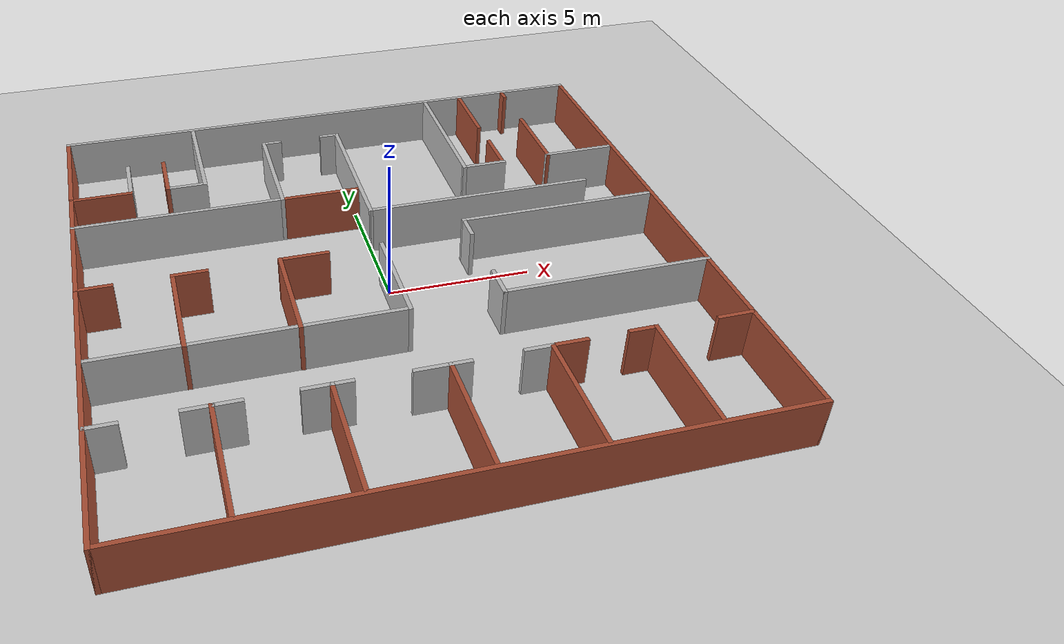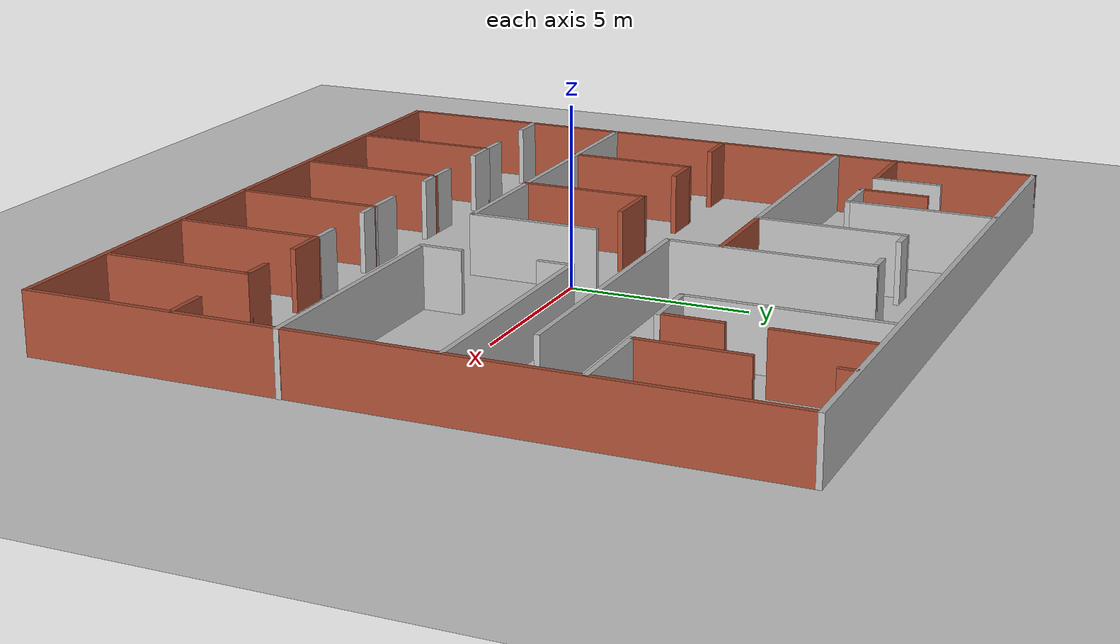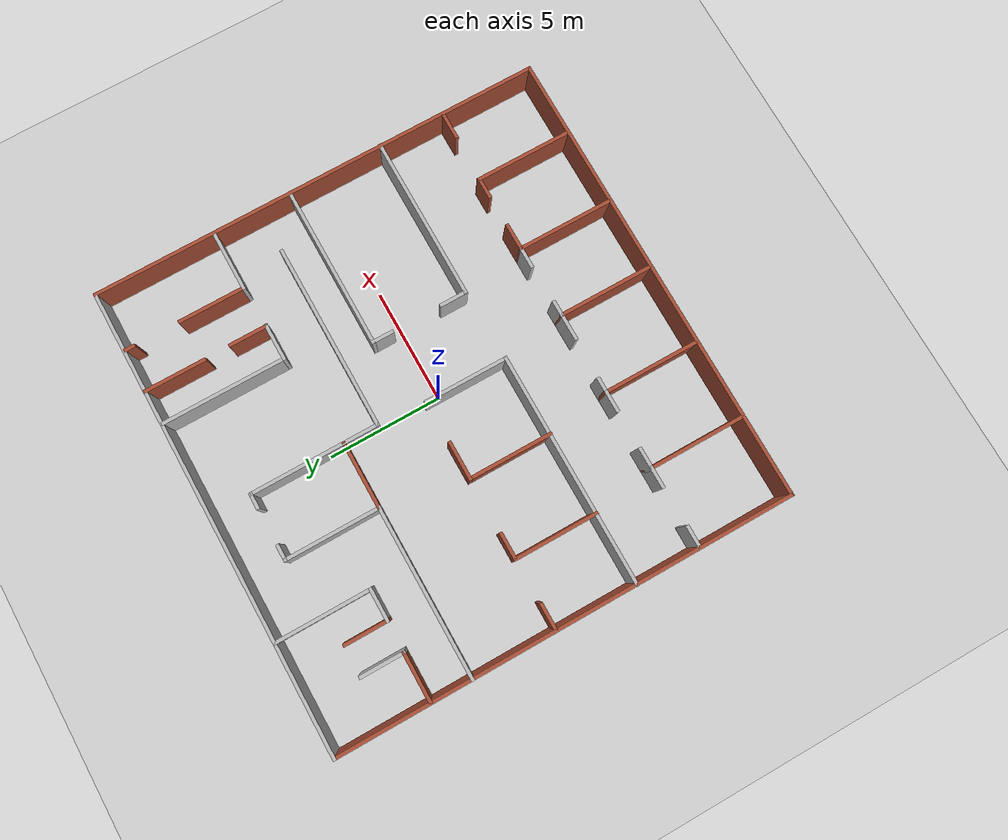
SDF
<sdf version='1.6'>
  <world name='default'>
    <light name='sun' type='directional'>
      <cast_shadows>1</cast_shadows>
      <pose frame=''>0 0 10 0 -0 0</pose>
      <diffuse>0.8 0.8 0.8 1</diffuse>
      <specular>0.2 0.2 0.2 1</specular>
      <attenuation>
        <range>1000</range>
        <constant>0.9</constant>
        <linear>0.01</linear>
        <quadratic>0.001</quadratic>
      </attenuation>
      <direction>-0.5 0.1 -0.9</direction>
    </light>
    <model name='ground_plane'>
      <static>1</static>
      <link name='link'>
        <collision name='collision'>
          <geometry>
            <plane>
              <normal>0 0 1</normal>
              <size>100 100</size>
            </plane>
          </geometry>
          <surface>
            <friction>
              <ode>
                <mu>100</mu>
                <mu2>50</mu2>
              </ode>
              <torsional>
                <ode/>
              </torsional>
            </friction>
            <contact>
              <ode/>
            </contact>
            <bounce/>
          </surface>
          <max_contacts>10</max_contacts>
        </collision>
        <visual name='visual'>

	<material> <!-- Body material -->
          <script>
            <uri>model://materials/scripts/repeated.material</uri>
            <name>RepeatedTexture</name>
          </script>
        </material> <!-- End Body Material -->

          <cast_shadows>0</cast_shadows>
          <geometry>
            <plane>
              <normal>0 0 1</normal>
              <size>100 100</size>
            </plane>
          </geometry>
          <material>
            <script>
              <uri>file://media/materials/scripts/gazebo.material</uri>
              <name>Gazebo/Grey</name>
            </script>
          </material>
        </visual>
        <self_collide>0</self_collide>
        <kinematic>0</kinematic>
      </link>
    </model>
    <gravity>0 0 -9.8</gravity>
    <magnetic_field>6e-06 2.3e-05 -4.2e-05</magnetic_field>
    <atmosphere type='adiabatic'/>
    <physics name='default_physics' default='0' type='ode'>
      <max_step_size>0.001</max_step_size>
      <real_time_factor>1</real_time_factor>
      <real_time_update_rate>1000</real_time_update_rate>
    </physics>
    <scene>
      <ambient>0.4 0.4 0.4 1</ambient>
      <background>0.7 0.7 0.7 1</background>
      <shadows>1</shadows>
    </scene>
    <spherical_coordinates>
      <surface_model>EARTH_WGS84</surface_model>
      <latitude_deg>0</latitude_deg>
      <longitude_deg>0</longitude_deg>
      <elevation>0</elevation>
      <heading_deg>0</heading_deg>
    </spherical_coordinates>
    <model name='Untitled'>
      <pose frame=''>-0.031815 0.055766 .45 0 -0 0</pose>
      <link name='Wall_11'>
        <collision name='Wall_11_Collision'>
          <geometry>
            <box>
              <size>2.21502 0.15 2.5</size>
            </box>
          </geometry>
          <pose frame=''>0 0 0 0 -0 0</pose>
          <max_contacts>10</max_contacts>
          <surface>
            <contact>
              <ode/>
            </contact>
            <bounce/>
            <friction>
              <torsional>
                <ode/>
              </torsional>
              <ode/>
            </friction>
          </surface>
        </collision>
        <visual name='Wall_11_Visual'>
          <pose frame=''>0 0 0 0 -0 0</pose>
          <geometry>
            <box>
              <size>2.21502 0.15 2.5</size>
            </box>
          </geometry>
          <material>
            <script>
              <uri>file://media/materials/scripts/gazebo.material</uri>
              <name>Gazebo/Bricks</name>
            </script>
            <ambient>1 1 1 1</ambient>
          </material>
          <meta>
            <layer>0</layer>
          </meta>
        </visual>
        <pose frame=''>-9.12135 5.94752 0 0 -0 0</pose>
        <self_collide>0</self_collide>
        <kinematic>0</kinematic>
      </link>
      <link name='Wall_12'>
        <collision name='Wall_12_Collision'>
          <geometry>
            <box>
              <size>2 0.15 2.5</size>
            </box>
          </geometry>
          <pose frame=''>0 0 0 0 -0 0</pose>
          <max_contacts>10</max_contacts>
          <surface>
            <contact>
              <ode/>
            </contact>
            <bounce/>
            <friction>
              <torsional>
                <ode/>
              </torsional>
              <ode/>
            </friction>
          </surface>
        </collision>
        <visual name='Wall_12_Visual'>
          <pose frame=''>0 0 0 0 -0 0</pose>
          <geometry>
            <box>
              <size>2 0.15 2.5</size>
            </box>
          </geometry>

	<material> <!-- Body material -->
          <script>
            <uri>model://materials/scripts/Pillar.material</uri>
            <name>Pillar</name>
          </script>
        </material> <!-- End Body Material -->

          <meta>
            <layer>0</layer>
          </meta>
        </visual>
        <pose frame=''>-8.07135 6.87252 0 0 -0 1.5708</pose>
        <self_collide>0</self_collide>
        <kinematic>0</kinematic>
      </link>
      <link name='Wall_16'>
        <collision name='Wall_16_Collision'>
          <geometry>
            <box>
              <size>4.25 0.15 2.5</size>
            </box>
          </geometry>
          <pose frame=''>0 0 0 0 -0 0</pose>
          <max_contacts>10</max_contacts>
          <surface>
            <contact>
              <ode/>
            </contact>
            <bounce/>
            <friction>
              <torsional>
                <ode/>
              </torsional>
              <ode/>
            </friction>
          </surface>
        </collision>
        <visual name='Wall_16_Visual'>

	<material> <!-- Body material -->
          <script>
            <uri>model://materials/scripts/WallOne.material</uri>
            <name>WallOne</name>
          </script>
        </material> <!-- End Body Material -->

          <pose frame=''>0 0 0 0 -0 0</pose>
          <geometry>
            <box>
              <size>4.25 0.15 2.5</size>
            </box>
          </geometry>

          <meta>
            <layer>0</layer>
          </meta>
        </visual>
        <pose frame=''>-5.39656 7.9727 0 0 0 -1.5708</pose>
        <self_collide>0</self_collide>
        <kinematic>0</kinematic>
      </link>
      <link name='Wall_17'>
        <collision name='Wall_17_Collision'>
          <geometry>
            <box>
              <size>1.5 0.15 2.5</size>
            </box>
          </geometry>
          <pose frame=''>0 0 0 0 -0 0</pose>
          <max_contacts>10</max_contacts>
          <surface>
            <contact>
              <ode/>
            </contact>
            <bounce/>
            <friction>
              <torsional>
                <ode/>
              </torsional>
              <ode/>
            </friction>
          </surface>
        </collision>
        <visual name='Wall_17_Visual'>
          <pose frame=''>0 0 0 0 -0 0</pose>
          <geometry>
            <box>
              <size>1.5 0.15 2.5</size>
            </box>
          </geometry>

<material> <!-- Body material -->
          <script>
            <uri>model://materials/scripts/Hall.material</uri>
            <name>Hall</name>
          </script>
        </material> <!-- End Body Material -->

          <meta>
            <layer>0</layer>
          </meta>
        </visual>
        <pose frame=''>-6.07156 5.9227 0 0 -0 3.14159</pose>
        <self_collide>0</self_collide>
        <kinematic>0</kinematic>
      </link>
      <link name='Wall_18'>
        <collision name='Wall_18_Collision'>
          <geometry>
            <box>
              <size>2 0.15 2.5</size>
            </box>
          </geometry>
          <pose frame=''>0 0 0 0 -0 0</pose>
          <max_contacts>10</max_contacts>
          <surface>
            <contact>
              <ode/>
            </contact>
            <bounce/>
            <friction>
              <torsional>
                <ode/>
              </torsional>
              <ode/>
            </friction>
          </surface>
        </collision>
        <visual name='Wall_18_Visual'>
          <pose frame=''>0 0 0 0 -0 0</pose>
          <geometry>
            <box>
              <size>2 0.15 2.5</size>
            </box>
          </geometry>
          <material>
            <script>
              <uri>file://media/materials/scripts/gazebo.material</uri>
              <name>Gazebo/Bricks</name>
            </script>
            <ambient>1 1 1 1</ambient>
          </material>
          <meta>
            <layer>0</layer>
          </meta>
        </visual>
        <pose frame=''>-6.74656 6.8477 0 0 -0 1.5708</pose>
        <self_collide>0</self_collide>
        <kinematic>0</kinematic>
      </link>
      <link name='Wall_2'>
        <collision name='Wall_2_Collision'>
          <geometry>
            <box>
              <size>20.5 0.15 2.5</size>
            </box>
          </geometry>
          <pose frame=''>0 0 0 0 -0 0</pose>
          <max_contacts>10</max_contacts>
          <surface>
            <contact>
              <ode/>
            </contact>
            <bounce/>
            <friction>
              <torsional>
                <ode/>
              </torsional>
              <ode/>
            </friction>
          </surface>
        </collision>
        <visual name='Wall_2_Visual'>
          <pose frame=''>0 0 0 0 -0 0</pose>
          <geometry>
            <box>
              <size>20.5 0.15 2.5</size>
            </box>
          </geometry>

          <material> <!-- Body material -->
          <script>
            <uri>model://materials/scripts/LabWall.material</uri>
            <name>LabWall</name>
          </script>
        </material> <!-- End Body Material -->

          <meta>
            <layer>0</layer>
          </meta>
        </visual>
        <pose frame=''>-0.003531 10.05 0 0 -0 0</pose>
        <self_collide>0</self_collide>
        <kinematic>0</kinematic>
      </link>
      <link name='Wall_21'>
        <collision name='Wall_21_Collision'>
          <geometry>
            <box>
              <size>2.75 0.15 2.5</size>
            </box>
          </geometry>
          <pose frame=''>0 0 0 0 -0 0</pose>
          <max_contacts>10</max_contacts>
          <surface>
            <contact>
              <ode/>
            </contact>
            <bounce/>
            <friction>
              <torsional>
                <ode/>
              </torsional>
              <ode/>
            </friction>
          </surface>
        </collision>
        <visual name='Wall_21_Visual'>
          <pose frame=''>0 0 0 0 -0 0</pose>
          <geometry>
            <box>
              <size>2.75 0.15 2.5</size>
            </box>
          </geometry>
          <material> <!-- Body material -->
          <script>
            <uri>model://materials/scripts/Office.material</uri>
            <name>Office</name>
          </script>
        </material> <!-- End Body Material -->
          <meta>
            <layer>0</layer>
          </meta>
        </visual>
        <pose frame=''>8.83462 4.72321 0 0 -0 3.14159</pose>
        <self_collide>0</self_collide>
        <kinematic>0</kinematic>
      </link>
      <link name='Wall_22'>
        <collision name='Wall_22_Collision'>
          <geometry>
            <box>
              <size>3 0.15 2.5</size>
            </box>
          </geometry>
          <pose frame=''>0 0 0 0 -0 0</pose>
          <max_contacts>10</max_contacts>
          <surface>
            <contact>
              <ode/>
            </contact>
            <bounce/>
            <friction>
              <torsional>
                <ode/>
              </torsional>
              <ode/>
            </friction>
          </surface>
        </collision>
        <visual name='Wall_22_Visual'>
          <pose frame=''>0 0 0 0 -0 0</pose>
          <geometry>
            <box>
              <size>3 0.15 2.5</size>
            </box>
          </geometry>
          <material>
            <script>
              <uri>file://media/materials/scripts/gazebo.material</uri>
              <name>Gazebo/Bricks</name>
            </script>
            <ambient>1 1 1 1</ambient>
          </material>
          <meta>
            <layer>0</layer>
          </meta>
        </visual>
        <pose frame=''>7.53462 6.14821 0 0 -0 1.5708</pose>
        <self_collide>0</self_collide>
        <kinematic>0</kinematic>
      </link>
      <link name='Wall_25'>
        <collision name='Wall_25_Collision'>
          <geometry>
            <box>
              <size>5.5 0.15 2.5</size>
            </box>
          </geometry>
          <pose frame=''>0 0 0 0 -0 0</pose>
          <max_contacts>10</max_contacts>
          <surface>
            <contact>
              <ode/>
            </contact>
            <bounce/>
            <friction>
              <torsional>
                <ode/>
              </torsional>
              <ode/>
            </friction>
          </surface>
        </collision>
        <visual name='Wall_25_Visual'>
          <pose frame=''>0 0 0 0 -0 0</pose>
          <geometry>
            <box>
              <size>5.5 0.15 2.5</size>
            </box>
          </geometry>
          <material> <!-- Body material -->
          <script>
            <uri>model://materials/scripts/lab.material</uri>
            <name>lab</name>
          </script>
        </material> <!-- End Body Material -->
          <meta>
            <layer>0</layer>
          </meta>
        </visual>
        <pose frame=''>4.17358 7.32047 0 0 -0 1.5708</pose>
        <self_collide>0</self_collide>
        <kinematic>0</kinematic>
      </link>
      <link name='Wall_27'>
        <collision name='Wall_27_Collision'>
          <geometry>
            <box>
              <size>1.68966 0.15 2.5</size>
            </box>
          </geometry>
          <pose frame=''>0 0 0 0 -0 0</pose>
          <max_contacts>10</max_contacts>
          <surface>
            <contact>
              <ode/>
            </contact>
            <bounce/>
            <friction>
              <torsional>
                <ode/>
              </torsional>
              <ode/>
            </friction>
          </surface>
        </collision>
        <visual name='Wall_27_Visual'>
          <pose frame=''>0 0 0 0 -0 0</pose>
          <geometry>
            <box>
              <size>1.68966 0.15 2.5</size>
            </box>
          </geometry>
          <material> <!-- Body material -->
          <script>
            <uri>model://materials/scripts/Pillar.material</uri>
            <name>Pillar</name>
          </script>
        </material> <!-- End Body Material -->
          <meta>
            <layer>0</layer>
          </meta>
        </visual>
        <pose frame=''>4.94341 4.64547 0 0 -0 0</pose>
        <self_collide>0</self_collide>
        <kinematic>0</kinematic>
      </link>
      <link name='Wall_28'>
        <collision name='Wall_28_Collision'>
          <geometry>
            <box>
              <size>1.75 0.15 2.5</size>
            </box>
          </geometry>
          <pose frame=''>0 0 0 0 -0 0</pose>
          <max_contacts>10</max_contacts>
          <surface>
            <contact>
              <ode/>
            </contact>
            <bounce/>
            <friction>
              <torsional>
                <ode/>
              </torsional>
              <ode/>
            </friction>
          </surface>
        </collision>
        <visual name='Wall_28_Visual'>
          <pose frame=''>0 0 0 0 -0 0</pose>
          <geometry>
            <box>
              <size>1.75 0.15 2.5</size>
            </box>
          </geometry>
          <material>
            <script>
              <uri>file://media/materials/scripts/gazebo.material</uri>
              <name>Gazebo/Bricks</name>
            </script>
            <ambient>1 1 1 1</ambient>
          </material>
          <meta>
            <layer>0</layer>
          </meta>
        </visual>
        <pose frame=''>5.69313 5.44547 0 0 -0 1.5708</pose>
        <self_collide>0</self_collide>
        <kinematic>0</kinematic>
      </link>
      <link name='Wall_32'>
        <collision name='Wall_32_Collision'>
          <geometry>
            <box>
              <size>7.5 0.15 2.5</size>
            </box>
          </geometry>
          <pose frame=''>0 0 0 0 -0 0</pose>
          <max_contacts>10</max_contacts>
          <surface>
            <contact>
              <ode/>
            </contact>
            <bounce/>
            <friction>
              <torsional>
                <ode/>
              </torsional>
              <ode/>
            </friction>
          </surface>
        </collision>
        <visual name='Wall_32_Visual'>
          <pose frame=''>0 0 0 0 -0 0</pose>
          <geometry>
            <box>
              <size>7.5 0.15 2.5</size>
            </box>
          </geometry>
          <material> <!-- Body material -->
          <script>
            <uri>model://materials/scripts/Table.material</uri>
            <name>Table</name>
          </script>
        </material> <!-- End Body Material -->
          <meta>
            <layer>0</layer>
          </meta>
        </visual>
        <pose frame=''>-6.51251 4.16275 0 0 -0 0</pose>
        <self_collide>0</self_collide>
        <kinematic>0</kinematic>
      </link>
      <link name='Wall_33'>
        <collision name='Wall_33_Collision'>
          <geometry>
            <box>
              <size>4.25 0.15 2.5</size>
            </box>
          </geometry>
          <pose frame=''>0 0 0 0 -0 0</pose>
          <max_contacts>10</max_contacts>
          <surface>
            <contact>
              <ode/>
            </contact>
            <bounce/>
            <friction>
              <torsional>
                <ode/>
              </torsional>
              <ode/>
            </friction>
          </surface>
        </collision>
        <visual name='Wall_33_Visual'>
          <pose frame=''>0 0 0 0 -0 0</pose>
          <geometry>
            <box>
              <size>4.25 0.15 2.5</size>
            </box>
          </geometry>
          <material> <!-- Body material -->
          <script>
            <uri>model://materials/scripts/Lab2.material</uri>
            <name>Lab2</name>
          </script>
        </material> <!-- End Body Material -->
          <meta>
            <layer>0</layer>
          </meta>
        </visual>
        <pose frame=''>-2.83751 6.21275 0 0 -0 1.5708</pose>
        <self_collide>0</self_collide>
        <kinematic>0</kinematic>
      </link>
      <link name='Wall_34'>
        <collision name='Wall_34_Collision'>
          <geometry>
            <box>
              <size>0.75 0.15 2.5</size>
            </box>
          </geometry>
          <pose frame=''>0 0 0 0 -0 0</pose>
          <max_contacts>10</max_contacts>
          <surface>
            <contact>
              <ode/>
            </contact>
            <bounce/>
            <friction>
              <torsional>
                <ode/>
              </torsional>
              <ode/>
            </friction>
          </surface>
        </collision>
        <visual name='Wall_34_Visual'>
          <pose frame=''>0 0 0 0 -0 0</pose>
          <geometry>
            <box>
              <size>0.75 0.15 2.5</size>
            </box>
          </geometry>
         <material> <!-- Body material -->
          <script>
            <uri>model://materials/scripts/Door.material</uri>
            <name>Door</name>
          </script>
        </material> <!-- End Body Material -->
          <meta>
            <layer>0</layer>
          </meta>
        </visual>
        <pose frame=''>-2.53751 8.26275 0 0 -0 0</pose>
        <self_collide>0</self_collide>
        <kinematic>0</kinematic>
      </link>
      <link name='Wall_36'>
        <collision name='Wall_36_Collision'>
          <geometry>
            <box>
              <size>0.75 0.15 2.5</size>
            </box>
          </geometry>
          <pose frame=''>0 0 0 0 -0 0</pose>
          <max_contacts>10</max_contacts>
          <surface>
            <contact>
              <ode/>
            </contact>
            <bounce/>
            <friction>
              <torsional>
                <ode/>
              </torsional>
              <ode/>
            </friction>
          </surface>
        </collision>
        <visual name='Wall_36_Visual'>
          <pose frame=''>0 0 0 0 -0 0</pose>
          <geometry>
            <box>
              <size>0.75 0.15 2.5</size>
            </box>
          </geometry>
          <material> <!-- Body material -->
          <script>
            <uri>model://materials/scripts/Door.material</uri>
            <name>Door</name>
          </script>
        </material> <!-- End Body Material -->
          <meta>
            <layer>0</layer>
          </meta>
        </visual>
        <pose frame=''>-0.255945 8.26592 0 0 -0 0</pose>
        <self_collide>0</self_collide>
        <kinematic>0</kinematic>
      </link>
      <link name='Wall_37'>
        <collision name='Wall_37_Collision'>
          <geometry>
            <box>
              <size>5.75 0.15 2.5</size>
            </box>
          </geometry>
          <pose frame=''>0 0 0 0 -0 0</pose>
          <max_contacts>10</max_contacts>
          <surface>
            <contact>
              <ode/>
            </contact>
            <bounce/>
            <friction>
              <torsional>
                <ode/>
              </torsional>
              <ode/>
            </friction>
          </surface>
        </collision>
        <visual name='Wall_37_Visual'>
          <pose frame=''>0 0 0 0 -0 0</pose>
          <geometry>
            <box>
              <size>5.75 0.15 2.5</size>
            </box>
          </geometry>
          <material> <!-- Body material -->
          <script>
            <uri>model://materials/scripts/Office.material</uri>
            <name>Office</name>
          </script>
        </material> <!-- End Body Material -->
          <meta>
            <layer>0</layer>
          </meta>
        </visual>
        <pose frame=''>0.044055 5.46592 0 0 0 -1.5708</pose>
        <self_collide>0</self_collide>
        <kinematic>0</kinematic>
      </link>
      <link name='Wall_38'>
        <collision name='Wall_38_Collision'>
          <geometry>
            <box>
              <size>8.25 0.15 2.5</size>
            </box>
          </geometry>
          <pose frame=''>0 0 0 0 -0 0</pose>
          <max_contacts>10</max_contacts>
          <surface>
            <contact>
              <ode/>
            </contact>
            <bounce/>
            <friction>
              <torsional>
                <ode/>
              </torsional>
              <ode/>
            </friction>
          </surface>
        </collision>
        <visual name='Wall_38_Visual'>

	<material> <!-- Body material -->
          <script>
            <uri>model://materials/scripts/Hall.material</uri>
            <name>Hall</name>
          </script>
        </material> <!-- End Body Material -->

          <pose frame=''>0 0 0 0 -0 0</pose>
          <geometry>
            <box>
              <size>8.25 0.15 2.5</size>
            </box>
          </geometry>
          <material>
            <script>
              <uri>file://media/materials/scripts/gazebo.material</uri>
              <name>Gazebo/Bricks</name>
            </script>
            <ambient>1 1 1 1</ambient>
          </material>
          <meta>
            <layer>0</layer>
          </meta>
        </visual>
        <pose frame=''>4.09405 2.66592 0 0 -0 0</pose>
        <self_collide>0</self_collide>
        <kinematic>0</kinematic>
      </link>
      <link name='Wall_4'>
        <collision name='Wall_4_Collision'>
          <geometry>
            <box>
              <size>20.25 0.15 2.5</size>
            </box>
          </geometry>
          <pose frame=''>0 0 0 0 -0 0</pose>
          <max_contacts>10</max_contacts>
          <surface>
            <contact>
              <ode/>
            </contact>
            <bounce/>
            <friction>
              <torsional>
                <ode/>
              </torsional>
              <ode/>
            </friction>
          </surface>
        </collision>
        <visual name='Wall_4_Visual'>
          <pose frame=''>0 0 0 0 -0 0</pose>
          <geometry>
            <box>
              <size>20.25 0.15 2.5</size>
            </box>
          </geometry>
          <material>
            <script>
              <uri>file://media/materials/scripts/gazebo.material</uri>
              <name>Gazebo/Bricks</name>
            </script>
            <ambient>1 1 1 1</ambient>
          </material>
          <meta>
            <layer>0</layer>
          </meta>
        </visual>
        <pose frame=''>-10.1785 0 0 0 0 -1.5708</pose>
        <self_collide>0</self_collide>
        <kinematic>0</kinematic>
      </link>
      <link name='Wall_40'>
        <collision name='Wall_40_Collision'>
          <geometry>
            <box>
              <size>3 0.15 2.5</size>
            </box>
          </geometry>
          <pose frame=''>0 0 0 0 -0 0</pose>
          <max_contacts>10</max_contacts>
          <surface>
            <contact>
              <ode/>
            </contact>
            <bounce/>
            <friction>
              <torsional>
                <ode/>
              </torsional>
              <ode/>
            </friction>
          </surface>
        </collision>
        <visual name='Wall_40_Visual'>
          <pose frame=''>0 0 0 0 -0 0</pose>
          <geometry>
            <box>
              <size>3 0.15 2.5</size>
            </box>
          </geometry>
          <material>
            <script>
              <uri>file://media/materials/scripts/gazebo.material</uri>
              <name>Gazebo/Bricks</name>
            </script>
            <ambient>1 1 1 1</ambient>
          </material>
          <meta>
            <layer>0</layer>
          </meta>
        </visual>
        <pose frame=''>-1.41251 4.16275 0 0 -0 0</pose>
        <self_collide>0</self_collide>
        <kinematic>0</kinematic>
      </link>
      <link name='Wall_43'>
        <collision name='Wall_43_Collision'>
          <geometry>
            <box>
              <size>4.25 0.15 2.5</size>
            </box>
          </geometry>
          <pose frame=''>0 0 0 0 -0 0</pose>
          <max_contacts>10</max_contacts>
          <surface>
            <contact>
              <ode/>
            </contact>
            <bounce/>
            <friction>
              <torsional>
                <ode/>
              </torsional>
              <ode/>
            </friction>
          </surface>
        </collision>
        <visual name='Wall_43_Visual'>
          <pose frame=''>0 0 0 0 -0 0</pose>
          <geometry>
            <box>
              <size>4.25 0.15 2.5</size>
            </box>
          </geometry>
          <material>
            <script>
              <uri>file://media/materials/scripts/gazebo.material</uri>
              <name>Gazebo/Bricks</name>
            </script>
            <ambient>1 1 1 1</ambient>
          </material>
          <meta>
            <layer>0</layer>
          </meta>
        </visual>
        <pose frame=''>-6.64746 -7.89825 0 0 -0 1.5708</pose>
        <self_collide>0</self_collide>
        <kinematic>0</kinematic>
      </link>
      <link name='Wall_45'>
        <collision name='Wall_45_Collision'>
          <geometry>
            <box>
              <size>1 0.15 2.5</size>
            </box>
          </geometry>
          <pose frame=''>0 0 0 0 -0 0</pose>
          <max_contacts>10</max_contacts>
          <surface>
            <contact>
              <ode/>
            </contact>
            <bounce/>
            <friction>
              <torsional>
                <ode/>
              </torsional>
              <ode/>
            </friction>
          </surface>
        </collision>
        <visual name='Wall_45_Visual'>

	<material> <!-- Body material -->
          <script>
            <uri>model://materials/scripts/Door.material</uri>
            <name>Door</name>
          </script>
        </material> <!-- End Body Material -->

          <pose frame=''>0 0 0 0 -0 0</pose>
          <geometry>
            <box>
              <size>1 0.15 2.5</size>
            </box>
          </geometry>

          <meta>
            <layer>0</layer>
          </meta>
        </visual>
        <pose frame=''>-6.22246 -5.84825 0 0 -0 0</pose>
        <self_collide>0</self_collide>
        <kinematic>0</kinematic>
      </link>
      <link name='Wall_47'>
        <collision name='Wall_47_Collision'>
          <geometry>
            <box>
              <size>1 0.15 2.5</size>
            </box>
          </geometry>
          <pose frame=''>0 0 0 0 -0 0</pose>
          <max_contacts>10</max_contacts>
          <surface>
            <contact>
              <ode/>
            </contact>
            <bounce/>
            <friction>
              <torsional>
                <ode/>
              </torsional>
              <ode/>
            </friction>
          </surface>
        </collision>
        <visual name='Wall_47_Visual'>

	<material> <!-- Body material -->
          <script>
            <uri>model://materials/scripts/Pillar.material</uri>
            <name>Pillar</name>
          </script>
        </material> <!-- End Body Material -->

          <pose frame=''>0 0 0 0 -0 0</pose>
          <geometry>
            <box>
              <size>1 0.15 2.5</size>
            </box>
          </geometry>

          <meta>
            <layer>0</layer>
          </meta>
        </visual>
        <pose frame=''>-3.62781 -5.84508 0 0 -0 0</pose>
        <self_collide>0</self_collide>
        <kinematic>0</kinematic>
      </link>
      <link name='Wall_48'>
        <collision name='Wall_48_Collision'>
          <geometry>
            <box>
              <size>4.25 0.15 2.5</size>
            </box>
          </geometry>
          <pose frame=''>0 0 0 0 -0 0</pose>
          <max_contacts>10</max_contacts>
          <surface>
            <contact>
              <ode/>
            </contact>
            <bounce/>
            <friction>
              <torsional>
                <ode/>
              </torsional>
              <ode/>
            </friction>
          </surface>
        </collision>
        <visual name='Wall_48_Visual'>
          <pose frame=''>0 0 0 0 -0 0</pose>
          <geometry>
            <box>
              <size>4.25 0.15 2.5</size>
            </box>
          </geometry>
          <material>
            <script>
              <uri>file://media/materials/scripts/gazebo.material</uri>
              <name>Gazebo/Bricks</name>
            </script>
            <ambient>1 1 1 1</ambient>
          </material>
          <meta>
            <layer>0</layer>
          </meta>
        </visual>
        <pose frame=''>-3.20281 -7.89508 0 0 0 -1.5708</pose>
        <self_collide>0</self_collide>
        <kinematic>0</kinematic>
      </link>
      <link name='Wall_5'>
        <collision name='Wall_5_Collision'>
          <geometry>
            <box>
              <size>20.5 0.15 2.5</size>
            </box>
          </geometry>
          <pose frame=''>0 0 0 0 -0 0</pose>
          <max_contacts>10</max_contacts>
          <surface>
            <contact>
              <ode/>
            </contact>
            <bounce/>
            <friction>
              <torsional>
                <ode/>
              </torsional>
              <ode/>
            </friction>
          </surface>
        </collision>
        <visual name='Wall_5_Visual'>
          <pose frame=''>0 0 0 0 -0 0</pose>
          <geometry>
            <box>
              <size>20.5 0.15 2.5</size>
            </box>
          </geometry>
          <material>
            <script>
              <uri>file://media/materials/scripts/gazebo.material</uri>
              <name>Gazebo/Bricks</name>
            </script>
            <ambient>1 1 1 1</ambient>
          </material>
          <meta>
            <layer>0</layer>
          </meta>
        </visual>
        <pose frame=''>-0.003531 -10.05 0 0 -0 0</pose>
        <self_collide>0</self_collide>
        <kinematic>0</kinematic>
      </link>
      <link name='Wall_50'>
        <collision name='Wall_50_Collision'>
          <geometry>
            <box>
              <size>4.25 0.15 2.5</size>
            </box>
          </geometry>
          <pose frame=''>0 0 0 0 -0 0</pose>
          <max_contacts>10</max_contacts>
          <surface>
            <contact>
              <ode/>
            </contact>
            <bounce/>
            <friction>
              <torsional>
                <ode/>
              </torsional>
              <ode/>
            </friction>
          </surface>
        </collision>
        <visual name='Wall_50_Visual'>
          <pose frame=''>0 0 0 0 -0 0</pose>
          <geometry>
            <box>
              <size>4.25 0.15 2.5</size>
            </box>
          </geometry>
          <material>
            <script>
              <uri>file://media/materials/scripts/gazebo.material</uri>
              <name>Gazebo/Bricks</name>
            </script>
            <ambient>1 1 1 1</ambient>
          </material>
          <meta>
            <layer>0</layer>
          </meta>
        </visual>
        <pose frame=''>0.35206 -7.93848 0 0 -0 1.5708</pose>
        <self_collide>0</self_collide>
        <kinematic>0</kinematic>
      </link>
      <link name='Wall_51'>
        <collision name='Wall_51_Collision'>
          <geometry>
            <box>
              <size>1.25 0.15 2.5</size>
            </box>
          </geometry>
          <pose frame=''>0 0 0 0 -0 0</pose>
          <max_contacts>10</max_contacts>
          <surface>
            <contact>
              <ode/>
            </contact>
            <bounce/>
            <friction>
              <torsional>
                <ode/>
              </torsional>
              <ode/>
            </friction>
          </surface>
        </collision>
        <visual name='Wall_51_Visual'>

	<material> <!-- Body material -->
          <script>
            <uri>model://materials/scripts/Pillar.material</uri>
            <name>Pillar</name>
          </script>
        </material> <!-- End Body Material -->

          <pose frame=''>0 0 0 0 -0 0</pose>
          <geometry>
            <box>
              <size>1.25 0.15 2.5</size>
            </box>
          </geometry>

          <meta>
            <layer>0</layer>
          </meta>
        </visual>
        <pose frame=''>-0.19794 -5.88848 0 0 -0 3.14159</pose>
        <self_collide>0</self_collide>
        <kinematic>0</kinematic>
      </link>
      <link name='Wall_53'>
        <collision name='Wall_53_Collision'>
          <geometry>
            <box>
              <size>0.75 0.15 2.5</size>
            </box>
          </geometry>
          <pose frame=''>0 0 0 0 -0 0</pose>
          <max_contacts>10</max_contacts>
          <surface>
            <contact>
              <ode/>
            </contact>
            <bounce/>
            <friction>
              <torsional>
                <ode/>
              </torsional>
              <ode/>
            </friction>
          </surface>
        </collision>
        <visual name='Wall_53_Visual'>

	<material> <!-- Body material -->
          <script>
            <uri>model://materials/scripts/Door.material</uri>
            <name>Door</name>
          </script>
        </material> <!-- End Body Material -->

          <pose frame=''>0 0 0 0 -0 0</pose>
          <geometry>
            <box>
              <size>0.75 0.15 2.5</size>
            </box>
          </geometry>

          <meta>
            <layer>0</layer>
          </meta>
        </visual>
        <pose frame=''>-2.90281 -5.84508 0 0 -0 0</pose>
        <self_collide>0</self_collide>
        <kinematic>0</kinematic>
      </link>
      <link name='Wall_55'>
        <collision name='Wall_55_Collision'>
          <geometry>
            <box>
              <size>0.75 0.15 2.5</size>
            </box>
          </geometry>
          <pose frame=''>0 0 0 0 -0 0</pose>
          <max_contacts>10</max_contacts>
          <surface>
            <contact>
              <ode/>
            </contact>
            <bounce/>
            <friction>
              <torsional>
                <ode/>
              </torsional>
              <ode/>
            </friction>
          </surface>
        </collision>
        <visual name='Wall_55_Visual'>

	<material> <!-- Body material -->
          <script>
            <uri>model://materials/scripts/Door.material</uri>
            <name>Door</name>
          </script>
        </material> <!-- End Body Material -->

<pose frame=''>0 0 0 0 -0 0</pose>
          <geometry>
            <box>
              <size>0.75 0.15 2.5</size>
            </box>
          </geometry>

          <meta>
            <layer>0</layer>
          </meta>
        </visual>
        <pose frame=''>0.65206 -5.88848 0 0 -0 0</pose>
        <self_collide>0</self_collide>
        <kinematic>0</kinematic>
      </link>
      <link name='Wall_58'>
        <collision name='Wall_58_Collision'>
          <geometry>
            <box>
              <size>1 0.15 2.5</size>
            </box>
          </geometry>
          <pose frame=''>0 0 0 0 -0 0</pose>
          <max_contacts>10</max_contacts>
          <surface>
            <contact>
              <ode/>
            </contact>
            <bounce/>
            <friction>
              <torsional>
                <ode/>
              </torsional>
              <ode/>
            </friction>
          </surface>
        </collision>
        <visual name='Wall_58_Visual'>

	<material> <!-- Body material -->
          <script>
            <uri>model://materials/scripts/Pillar.material</uri>
            <name>Pillar</name>
          </script>
        </material> <!-- End Body Material -->

          <pose frame=''>0 0 0 0 -0 0</pose>
          <geometry>
            <box>
              <size>1 0.15 2.5</size>
            </box>
          </geometry>

          <meta>
            <layer>0</layer>
          </meta>
        </visual>
        <pose frame=''>3.11887 -5.84508 0 0 -0 0</pose>
        <self_collide>0</self_collide>
        <kinematic>0</kinematic>
      </link>
      <link name='Wall_59'>
        <collision name='Wall_59_Collision'>
          <geometry>
            <box>
              <size>4.25 0.15 2.5</size>
            </box>
          </geometry>
          <pose frame=''>0 0 0 0 -0 0</pose>
          <max_contacts>10</max_contacts>
          <surface>
            <contact>
              <ode/>
            </contact>
            <bounce/>
            <friction>
              <torsional>
                <ode/>
              </torsional>
              <ode/>
            </friction>
          </surface>
        </collision>
        <visual name='Wall_59_Visual'>
          <pose frame=''>0 0 0 0 -0 0</pose>
          <geometry>
            <box>
              <size>4.25 0.15 2.5</size>
            </box>
          </geometry>
          <material>
            <script>
              <uri>file://media/materials/scripts/gazebo.material</uri>
              <name>Gazebo/Bricks</name>
            </script>
            <ambient>1 1 1 1</ambient>
          </material>
          <meta>
            <layer>0</layer>
          </meta>
        </visual>
        <pose frame=''>3.54387 -7.89508 0 0 0 -1.5708</pose>
        <self_collide>0</self_collide>
        <kinematic>0</kinematic>
      </link>
      <link name='Wall_6'>
        <collision name='Wall_6_Collision'>
          <geometry>
            <box>
              <size>20.25 0.15 2.5</size>
            </box>
          </geometry>
          <pose frame=''>0 0 0 0 -0 0</pose>
          <max_contacts>10</max_contacts>
          <surface>
            <contact>
              <ode/>
            </contact>
            <bounce/>
            <friction>
              <torsional>
                <ode/>
              </torsional>
              <ode/>
            </friction>
          </surface>
        </collision>
        <visual name='Wall_6_Visual'>
          <pose frame=''>0 0 0 0 -0 0</pose>
          <geometry>
            <box>
              <size>20.25 0.15 2.5</size>
            </box>
          </geometry>
          <material>
            <script>
              <uri>file://media/materials/scripts/gazebo.material</uri>
              <name>Gazebo/Bricks</name>
            </script>
            <ambient>1 1 1 1</ambient>
          </material>
          <meta>
            <layer>0</layer>
          </meta>
        </visual>
        <pose frame=''>10.1715 0 0 0 -0 1.5708</pose>
        <self_collide>0</self_collide>
        <kinematic>0</kinematic>
      </link>
      <link name='Wall_61'>
        <collision name='Wall_61_Collision'>
          <geometry>
            <box>
              <size>1.25 0.15 2.5</size>
            </box>
          </geometry>
          <pose frame=''>0 0 0 0 -0 0</pose>
          <max_contacts>10</max_contacts>
          <surface>
            <contact>
              <ode/>
            </contact>
            <bounce/>
            <friction>
              <torsional>
                <ode/>
              </torsional>
              <ode/>
            </friction>
          </surface>
        </collision>
        <visual name='Wall_61_Visual'>
          <pose frame=''>0 0 0 0 -0 0</pose>
          <geometry>
            <box>
              <size>1.25 0.15 2.5</size>
            </box>
          </geometry>
          <material>
            <script>
              <uri>file://media/materials/scripts/gazebo.material</uri>
              <name>Gazebo/Bricks</name>
            </script>
            <ambient>1 1 1 1</ambient>
          </material>
          <meta>
            <layer>0</layer>
          </meta>
        </visual>
        <pose frame=''>4.09387 -5.84508 0 0 -0 0</pose>
        <self_collide>0</self_collide>
        <kinematic>0</kinematic>
      </link>
      <link name='Wall_63'>
        <collision name='Wall_63_Collision'>
          <geometry>
            <box>
              <size>1 0.15 2.5</size>
            </box>
          </geometry>
          <pose frame=''>0 0 0 0 -0 0</pose>
          <max_contacts>10</max_contacts>
          <surface>
            <contact>
              <ode/>
            </contact>
            <bounce/>
            <friction>
              <torsional>
                <ode/>
              </torsional>
              <ode/>
            </friction>
          </surface>
        </collision>
        <visual name='Wall_63_Visual'>
          <pose frame=''>0 0 0 0 -0 0</pose>
          <geometry>
            <box>
              <size>1 0.15 2.5</size>
            </box>
          </geometry>
          <material>
            <script>
              <uri>file://media/materials/scripts/gazebo.material</uri>
              <name>Gazebo/Bricks</name>
            </script>
            <ambient>1 1 1 1</ambient>
          </material>
          <meta>
            <layer>0</layer>
          </meta>
        </visual>
        <pose frame=''>6.50943 -5.82497 0 0 -0 0</pose>
        <self_collide>0</self_collide>
        <kinematic>0</kinematic>
      </link>
      <link name='Wall_64'>
        <collision name='Wall_64_Collision'>
          <geometry>
            <box>
              <size>4.25 0.15 2.5</size>
            </box>
          </geometry>
          <pose frame=''>0 0 0 0 -0 0</pose>
          <max_contacts>10</max_contacts>
          <surface>
            <contact>
              <ode/>
            </contact>
            <bounce/>
            <friction>
              <torsional>
                <ode/>
              </torsional>
              <ode/>
            </friction>
          </surface>
        </collision>
        <visual name='Wall_64_Visual'>
          <pose frame=''>0 0 0 0 -0 0</pose>
          <geometry>
            <box>
              <size>4.25 0.15 2.5</size>
            </box>
          </geometry>
          <material>
            <script>
              <uri>file://media/materials/scripts/gazebo.material</uri>
              <name>Gazebo/Bricks</name>
            </script>
            <ambient>1 1 1 1</ambient>
          </material>
          <meta>
            <layer>0</layer>
          </meta>
        </visual>
        <pose frame=''>6.93443 -7.87497 0 0 0 -1.5708</pose>
        <self_collide>0</self_collide>
        <kinematic>0</kinematic>
      </link>
      <link name='Wall_66'>
        <collision name='Wall_66_Collision'>
          <geometry>
            <box>
              <size>1.25 0.15 2.5</size>
            </box>
          </geometry>
          <pose frame=''>0 0 0 0 -0 0</pose>
          <max_contacts>10</max_contacts>
          <surface>
            <contact>
              <ode/>
            </contact>
            <bounce/>
            <friction>
              <torsional>
                <ode/>
              </torsional>
              <ode/>
            </friction>
          </surface>
        </collision>
        <visual name='Wall_66_Visual'>
          <pose frame=''>0 0 0 0 -0 0</pose>
          <geometry>
            <box>
              <size>1.25 0.15 2.5</size>
            </box>
          </geometry>
          <material>
            <script>
              <uri>file://media/materials/scripts/gazebo.material</uri>
              <name>Gazebo/Bricks</name>
            </script>
            <ambient>1 1 1 1</ambient>
          </material>
          <meta>
            <layer>0</layer>
          </meta>
        </visual>
        <pose frame=''>9.57101 -5.90542 0 0 -0 0</pose>
        <self_collide>0</self_collide>
        <kinematic>0</kinematic>
      </link>
      <link name='Wall_68'>
        <collision name='Wall_68_Collision'>
          <geometry>
            <box>
              <size>1 0.15 2.5</size>
            </box>
          </geometry>
          <pose frame=''>0 0 0 0 -0 0</pose>
          <max_contacts>10</max_contacts>
          <surface>
            <contact>
              <ode/>
            </contact>
            <bounce/>
            <friction>
              <torsional>
                <ode/>
              </torsional>
              <ode/>
            </friction>
          </surface>
        </collision>
        <visual name='Wall_68_Visual'>

<material> <!-- Body material -->
          <script>
            <uri>model://materials/scripts/Door.material</uri>
            <name>Door</name>
          </script>
        </material> <!-- End Body Material -->

          <pose frame=''>0 0 0 0 -0 0</pose>
          <geometry>
            <box>
              <size>1 0.15 2.5</size>
            </box>
          </geometry>

          <meta>
            <layer>0</layer>
          </meta>
        </visual>
        <pose frame=''>-9.70211 -5.88531 0 0 -0 0</pose>
        <self_collide>0</self_collide>
        <kinematic>0</kinematic>
      </link>
      <link name='Wall_70'>
        <collision name='Wall_70_Collision'>
          <geometry>
            <box>
              <size>1 0.15 2.5</size>
            </box>
          </geometry>
          <pose frame=''>0 0 0 0 -0 0</pose>
          <max_contacts>10</max_contacts>
          <surface>
            <contact>
              <ode/>
            </contact>
            <bounce/>
            <friction>
              <torsional>
                <ode/>
              </torsional>
              <ode/>
            </friction>
          </surface>
        </collision>
        <visual name='Wall_70_Visual'>

	<material> <!-- Body material -->
          <script>
            <uri>model://materials/scripts/Pillar.material</uri>
            <name>Pillar</name>
          </script>
        </material> <!-- End Body Material -->

          <pose frame=''>0 0 0 0 -0 0</pose>
          <geometry>
            <box>
              <size>1 0.15 2.5</size>
            </box>
          </geometry>

          <meta>
            <layer>0</layer>
          </meta>
        </visual>
        <pose frame=''>-7.05235 -5.84825 0 0 -0 0</pose>
        <self_collide>0</self_collide>
        <kinematic>0</kinematic>
      </link>
      <link name='Wall_72'>
        <collision name='Wall_72_Collision'>
          <geometry>
            <box>
              <size>10.25 0.15 2.5</size>
            </box>
          </geometry>
          <pose frame=''>0 0 0 0 -0 0</pose>
          <max_contacts>10</max_contacts>
          <surface>
            <contact>
              <ode/>
            </contact>
            <bounce/>
            <friction>
              <torsional>
                <ode/>
              </torsional>
              <ode/>
            </friction>
          </surface>
        </collision>
        <visual name='Wall_72_Visual'>

	<material> <!-- Body material -->
          <script>
            <uri>model://materials/scripts/Elevator.material</uri>
            <name>Elevator</name>
          </script>
        </material> <!-- End Body Material -->

          <pose frame=''>0 0 0 0 -0 0</pose>
          <geometry>
            <box>
              <size>10.25 0.15 2.5</size>
            </box>
          </geometry>

          <meta>
            <layer>0</layer>
          </meta>
        </visual>
        <pose frame=''>-5.13745 -3.0493 0 0 -0 0</pose>
        <self_collide>0</self_collide>
        <kinematic>0</kinematic>
      </link>
      <link name='Wall_73'>
        <collision name='Wall_73_Collision'>
          <geometry>
            <box>
              <size>3.75 0.15 2.5</size>
            </box>
          </geometry>
          <pose frame=''>0 0 0 0 -0 0</pose>
          <max_contacts>10</max_contacts>
          <surface>
            <contact>
              <ode/>
            </contact>
            <bounce/>
            <friction>
              <torsional>
                <ode/>
              </torsional>
              <ode/>
            </friction>
          </surface>
        </collision>
        <visual name='Wall_73_Visual'>

	<material> <!-- Body material -->
          <script>
            <uri>model://materials/scripts/Table.material</uri>
            <name>Table</name>
          </script>
        </material> <!-- End Body Material -->

          <pose frame=''>0 0 0 0 -0 0</pose>
          <geometry>
            <box>
              <size>3.75 0.15 2.5</size>
            </box>
          </geometry>
          <material>
            <script>
              <uri>file://media/materials/scripts/gazebo.material</uri>
              <name>Gazebo/Bricks</name>
            </script>
            <ambient>1 1 1 1</ambient>
          </material>
          <meta>
            <layer>0</layer>
          </meta>
        </visual>
        <pose frame=''>-0.087451 -1.2493 0 0 -0 1.5708</pose>
        <self_collide>0</self_collide>
        <kinematic>0</kinematic>
      </link>
      <link name='Wall_75'>
        <collision name='Wall_75_Collision'>
          <geometry>
            <box>
              <size>7.25 0.15 2.5</size>
            </box>
          </geometry>
          <pose frame=''>0 0 0 0 -0 0</pose>
          <max_contacts>10</max_contacts>
          <surface>
            <contact>
              <ode/>
            </contact>
            <bounce/>
            <friction>
              <torsional>
                <ode/>
              </torsional>
              <ode/>
            </friction>
          </surface>
        </collision>
        <visual name='Wall_75_Visual'>
          <pose frame=''>0 0 0 0 -0 0</pose>
          <geometry>
            <box>
              <size>7.25 0.15 2.5</size>
            </box>
          </geometry>
          <material> <!-- Body material -->
          <script>
            <uri>model://materials/scripts/Lab2.material</uri>
            <name>Lab2</name>
          </script>
        </material> <!-- End Body Material -->
          <meta>
            <layer>0</layer>
          </meta>
        </visual>
        <pose frame=''>6.59737 1.23489 0 0 -0 3.14159</pose>
        <self_collide>0</self_collide>
        <kinematic>0</kinematic>
      </link>
      <link name='Wall_76'>
        <collision name='Wall_76_Collision'>
          <geometry>
            <box>
              <size>1 0.15 2.5</size>
            </box>
          </geometry>
          <pose frame=''>0 0 0 0 -0 0</pose>
          <max_contacts>10</max_contacts>
          <surface>
            <contact>
              <ode/>
            </contact>
            <bounce/>
            <friction>
              <torsional>
                <ode/>
              </torsional>
              <ode/>
            </friction>
          </surface>
        </collision>
        <visual name='Wall_76_Visual'>

	<material> <!-- Body material -->
          <script>
            <uri>model://materials/scripts/Door.material</uri>
            <name>Door</name>
          </script>
        </material> <!-- End Body Material -->

          <pose frame=''>0 0 0 0 -0 0</pose>
          <geometry>
            <box>
              <size>1 0.15 2.5</size>
            </box>
          </geometry>

          <meta>
            <layer>0</layer>
          </meta>
        </visual>
        <pose frame=''>3.04737 0.809894 0 0 0 -1.5708</pose>
        <self_collide>0</self_collide>
        <kinematic>0</kinematic>
      </link>
      <link name='Wall_78'>
        <collision name='Wall_78_Collision'>
          <geometry>
            <box>
              <size>1.25 0.15 2.5</size>
            </box>
          </geometry>
          <pose frame=''>0 0 0 0 -0 0</pose>
          <max_contacts>10</max_contacts>
          <surface>
            <contact>
              <ode/>
            </contact>
            <bounce/>
            <friction>
              <torsional>
                <ode/>
              </torsional>
              <ode/>
            </friction>
          </surface>
        </collision>
        <visual name='Wall_78_Visual'>
          <pose frame=''>0 0 0 0 -0 0</pose>
          <geometry>
            <box>
              <size>1.25 0.15 2.5</size>
            </box>
          </geometry>
          <material> <!-- Body material -->
          <script>
            <uri>model://materials/scripts/Pillar.material</uri>
            <name>Pillar</name>
          </script>
        </material> <!-- End Body Material -->

          <meta>
            <layer>0</layer>
          </meta>
        </visual>
        <pose frame=''>3.04728 -2.42987 0 0 0 -1.5708</pose>
        <self_collide>0</self_collide>
        <kinematic>0</kinematic>
      </link>
      <link name='Wall_79'>
        <collision name='Wall_79_Collision'>
          <geometry>
            <box>
              <size>7.27011 0.15 2.5</size>
            </box>
          </geometry>
          <pose frame=''>0 0 0 0 -0 0</pose>
          <max_contacts>10</max_contacts>
          <surface>
            <contact>
              <ode/>
            </contact>
            <bounce/>
            <friction>
              <torsional>
                <ode/>
              </torsional>
              <ode/>
            </friction>
          </surface>
        </collision>
        <visual name='Wall_79_Visual'>
          <pose frame=''>0 0 0 0 -0 0</pose>
          <geometry>
            <box>
              <size>7.27011 0.15 2.5</size>
            </box>
          </geometry>
          	<material> <!-- Body material -->
          <script>
            <uri>model://materials/scripts/Lab2.material</uri>
            <name>Lab2</name>
          </script>
        </material> <!-- End Body Material -->
          <meta>
            <layer>0</layer>
          </meta>
        </visual>
        <pose frame=''>6.62745 -2.97987 0 0 -0 0</pose>
        <self_collide>0</self_collide>
        <kinematic>0</kinematic>
      </link>
      <link name='Wall_81'>
        <collision name='Wall_81_Collision'>
          <geometry>
            <box>
              <size>2.75 0.15 2.5</size>
            </box>
          </geometry>
          <pose frame=''>0 0 0 0 -0 0</pose>
          <max_contacts>10</max_contacts>
          <surface>
            <contact>
              <ode/>
            </contact>
            <bounce/>
            <friction>
              <torsional>
                <ode/>
              </torsional>
              <ode/>
            </friction>
          </surface>
        </collision>
        <visual name='Wall_81_Visual'>
          <pose frame=''>0 0 0 0 -0 0</pose>
          <geometry>
            <box>
              <size>2.75 0.15 2.5</size>
            </box>
          </geometry>
          <material>
            <script>
              <uri>file://media/materials/scripts/gazebo.material</uri>
              <name>Gazebo/Bricks</name>
            </script>
            <ambient>1 1 1 1</ambient>
          </material>
          <meta>
            <layer>0</layer>
          </meta>
        </visual>
        <pose frame=''>5.66204 8.72452 0 0 0 -1.5708</pose>
        <self_collide>0</self_collide>
        <kinematic>0</kinematic>
      </link>
      <link name='Wall_83'>
        <collision name='Wall_83_Collision'>
          <geometry>
            <box>
              <size>0.5 0.15 2.5</size>
            </box>
          </geometry>
          <pose frame=''>0 0 0 0 -0 0</pose>
          <max_contacts>10</max_contacts>
          <surface>
            <contact>
              <ode/>
            </contact>
            <bounce/>
            <friction>
              <torsional>
                <ode/>
              </torsional>
              <ode/>
            </friction>
          </surface>
        </collision>
        <visual name='Wall_83_Visual'>
          <pose frame=''>0 0 0 0 -0 0</pose>
          <geometry>
            <box>
              <size>0.5 0.15 2.5</size>
            </box>
          </geometry>
          <material>
            <script>
              <uri>file://media/materials/scripts/gazebo.material</uri>
              <name>Gazebo/Bricks</name>
            </script>
            <ambient>1 1 1 1</ambient>
          </material>
          <meta>
            <layer>0</layer>
          </meta>
        </visual>
        <pose frame=''>7.53261 9.8093 0 0 0 -1.5708</pose>
        <self_collide>0</self_collide>
        <kinematic>0</kinematic>
      </link>
      <link name='Wall_85'>
        <collision name='Wall_85_Collision'>
          <geometry>
            <box>
              <size>3.75 0.15 2.5</size>
            </box>
          </geometry>
          <pose frame=''>0 0 0 0 -0 0</pose>
          <max_contacts>10</max_contacts>
          <surface>
            <contact>
              <ode/>
            </contact>
            <bounce/>
            <friction>
              <torsional>
                <ode/>
              </torsional>
              <ode/>
            </friction>
          </surface>
        </collision>
        <visual name='Wall_85_Visual'>
          <pose frame=''>0 0 0 0 -0 0</pose>
          <geometry>
            <box>
              <size>3.75 0.15 2.5</size>
            </box>
          </geometry>
          <material>
            <script>
              <uri>file://media/materials/scripts/gazebo.material</uri>
              <name>Gazebo/Bricks</name>
            </script>
            <ambient>1 1 1 1</ambient>
          </material>
          <meta>
            <layer>0</layer>
          </meta>
        </visual>
        <pose frame=''>-3.57009 -1.26908 0 0 0 -1.5708</pose>
        <self_collide>0</self_collide>
        <kinematic>0</kinematic>
      </link>
      <link name='Wall_87'>
        <collision name='Wall_87_Collision'>
          <geometry>
            <box>
              <size>1.75 0.15 2.5</size>
            </box>
          </geometry>
          <pose frame=''>0 0 0 0 -0 0</pose>
          <max_contacts>10</max_contacts>
          <surface>
            <contact>
              <ode/>
            </contact>
            <bounce/>
            <friction>
              <torsional>
                <ode/>
              </torsional>
              <ode/>
            </friction>
          </surface>
        </collision>
        <visual name='Wall_87_Visual'>
          <pose frame=''>0 0 0 0 -0 0</pose>
          <geometry>
            <box>
              <size>1.75 0.15 2.5</size>
            </box>
          </geometry>
          <material>
            <script>
              <uri>file://media/materials/scripts/gazebo.material</uri>
              <name>Gazebo/Bricks</name>
            </script>
            <ambient>1 1 1 1</ambient>
          </material>
          <meta>
            <layer>0</layer>
          </meta>
        </visual>
        <pose frame=''>-2.77009 0.530919 0 0 -0 0</pose>
        <self_collide>0</self_collide>
        <kinematic>0</kinematic>
      </link>
      <link name='Wall_89'>
        <collision name='Wall_89_Collision'>
          <geometry>
            <box>
              <size>3.75 0.15 2.5</size>
            </box>
          </geometry>
          <pose frame=''>0 0 0 0 -0 0</pose>
          <max_contacts>10</max_contacts>
          <surface>
            <contact>
              <ode/>
            </contact>
            <bounce/>
            <friction>
              <torsional>
                <ode/>
              </torsional>
              <ode/>
            </friction>
          </surface>
        </collision>
        <visual name='Wall_89_Visual'>
          <pose frame=''>0 0 0 0 -0 0</pose>
          <geometry>
            <box>
              <size>3.75 0.15 2.5</size>
            </box>
          </geometry>
          <material>
            <script>
              <uri>file://media/materials/scripts/gazebo.material</uri>
              <name>Gazebo/Bricks</name>
            </script>
            <ambient>1 1 1 1</ambient>
          </material>
          <meta>
            <layer>0</layer>
          </meta>
        </visual>
        <pose frame=''>-7.11008 -1.26941 0 0 -0 1.5708</pose>
        <self_collide>0</self_collide>
        <kinematic>0</kinematic>
      </link>
      <link name='Wall_90'>
        <collision name='Wall_90_Collision'>
          <geometry>
            <box>
              <size>1.25 0.15 2.5</size>
            </box>
          </geometry>
          <pose frame=''>0 0 0 0 -0 0</pose>
          <max_contacts>10</max_contacts>
          <surface>
            <contact>
              <ode/>
            </contact>
            <bounce/>
            <friction>
              <torsional>
                <ode/>
              </torsional>
              <ode/>
            </friction>
          </surface>
        </collision>
        <visual name='Wall_90_Visual'>
          <pose frame=''>0 0 0 0 -0 0</pose>
          <geometry>
            <box>
              <size>1.25 0.15 2.5</size>
            </box>
          </geometry>
          <material>
            <script>
              <uri>file://media/materials/scripts/gazebo.material</uri>
              <name>Gazebo/Bricks</name>
            </script>
            <ambient>1 1 1 1</ambient>
          </material>
          <meta>
            <layer>0</layer>
          </meta>
        </visual>
        <pose frame=''>-6.56008 0.53059 0 0 -0 0</pose>
        <self_collide>0</self_collide>
        <kinematic>0</kinematic>
      </link>
      <link name='Wall_92'>
        <collision name='Wall_92_Collision'>
          <geometry>
            <box>
              <size>1.25 0.15 2.5</size>
            </box>
          </geometry>
          <pose frame=''>0 0 0 0 -0 0</pose>
          <max_contacts>10</max_contacts>
          <surface>
            <contact>
              <ode/>
            </contact>
            <bounce/>
            <friction>
              <torsional>
                <ode/>
              </torsional>
              <ode/>
            </friction>
          </surface>
        </collision>
        <visual name='Wall_92_Visual'>
          <pose frame=''>0 0 0 0 -0 0</pose>
          <geometry>
            <box>
              <size>1.25 0.15 2.5</size>
            </box>
          </geometry>
          <material>
            <script>
              <uri>file://media/materials/scripts/gazebo.material</uri>
              <name>Gazebo/Bricks</name>
            </script>
            <ambient>1 1 1 1</ambient>
          </material>
          <meta>
            <layer>0</layer>
          </meta>
        </visual>
        <pose frame=''>-9.61734 0.510806 0 0 -0 0</pose>
        <self_collide>0</self_collide>
        <kinematic>0</kinematic>
      </link>
      <static>1</static>
    </model>
    <gui fullscreen='0'>
      <camera name='user_camera'>
        <pose frame=''>1.43112 -1.03528 78.5937 3.9e-05 1.5698 1.57225</pose>
        <view_controller>orbit</view_controller>
        <projection_type>perspective</projection_type>
      </camera>
    </gui>
  </world>
</sdf>
